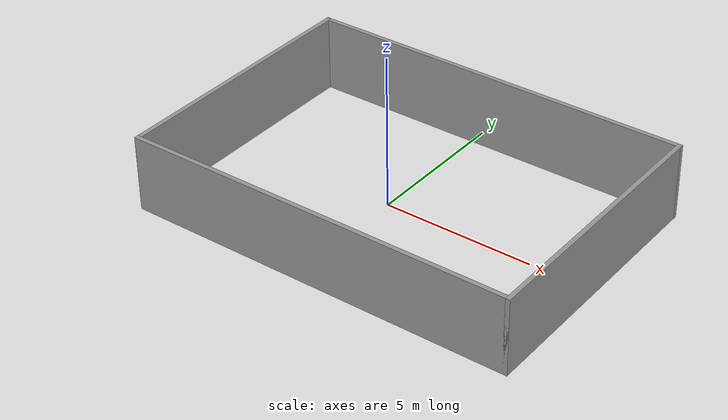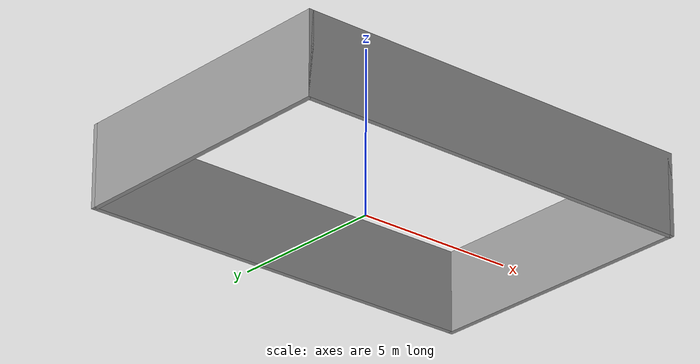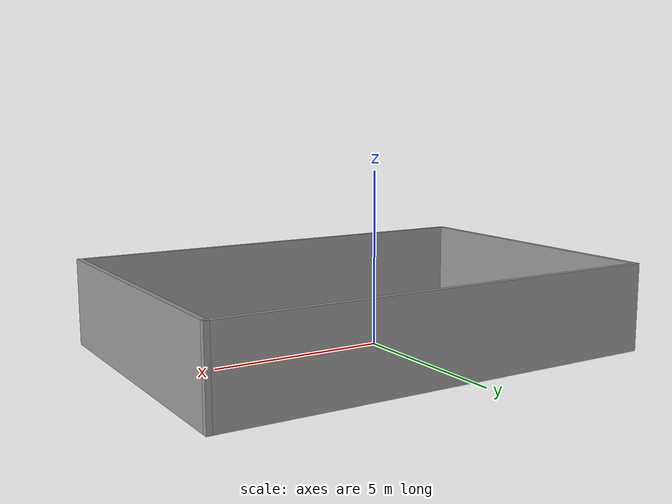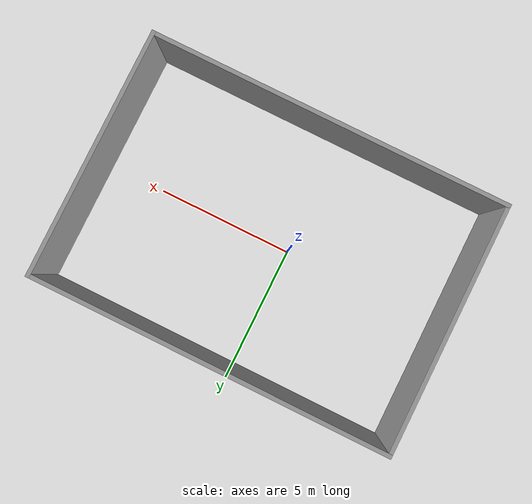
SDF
<?xml version='1.0'?>
<sdf version='1.7'>
  <model name='room'>
    <pose>0.706169 0.029559 0 0 -0 0</pose>
    <link name='Wall_10'>
      <collision name='Wall_10_Collision'>
        <geometry>
          <box>
            <size>9 0.15 2.5</size>
          </box>
        </geometry>
        <pose>0 0 1.25 0 -0 0</pose>
      </collision>
      <visual name='Wall_10_Visual'>
        <pose>0 0 1.25 0 -0 0</pose>
        <geometry>
          <box>
            <size>9 0.15 2.5</size>
          </box>
        </geometry>
        <material>
          <script>
            <uri>file://media/materials/scripts/gazebo.material</uri>
            <name>Gazebo/Grey</name>
          </script>
          <ambient>1 1 1 1</ambient>
        </material>
        <meta>
          <layer>0</layer>
        </meta>
      </visual>
      <pose>6.425 -0 0 0 -0 1.5708</pose>
    </link>
    <link name='Wall_11'>
      <collision name='Wall_11_Collision'>
        <geometry>
          <box>
            <size>13 0.15 2.5</size>
          </box>
        </geometry>
        <pose>0 0 1.25 0 -0 0</pose>
      </collision>
      <visual name='Wall_11_Visual'>
        <pose>0 0 1.25 0 -0 0</pose>
        <geometry>
          <box>
            <size>13 0.15 2.5</size>
          </box>
        </geometry>
        <material>
          <script>
            <uri>file://media/materials/scripts/gazebo.material</uri>
            <name>Gazebo/Grey</name>
          </script>
          <ambient>1 1 1 1</ambient>
        </material>
        <meta>
          <layer>0</layer>
        </meta>
      </visual>
      <pose>0 4.425 0 0 -0 3.14159</pose>
    </link>
    <link name='Wall_12'>
      <collision name='Wall_12_Collision'>
        <geometry>
          <box>
            <size>9 0.15 2.5</size>
          </box>
        </geometry>
        <pose>0 0 1.25 0 -0 0</pose>
      </collision>
      <visual name='Wall_12_Visual'>
        <pose>0 0 1.25 0 -0 0</pose>
        <geometry>
          <box>
            <size>9 0.15 2.5</size>
          </box>
        </geometry>
        <material>
          <script>
            <uri>file://media/materials/scripts/gazebo.material</uri>
            <name>Gazebo/Grey</name>
          </script>
          <ambient>1 1 1 1</ambient>
        </material>
        <meta>
          <layer>0</layer>
        </meta>
      </visual>
      <pose>-6.425 -0 0 0 -0 -1.5708</pose>
    </link>
    <link name='Wall_9'>
      <collision name='Wall_9_Collision'>
        <geometry>
          <box>
            <size>13 0.15 2.5</size>
          </box>
        </geometry>
        <pose>0 0 1.25 0 -0 0</pose>
      </collision>
      <visual name='Wall_9_Visual'>
        <pose>0 0 1.25 0 -0 0</pose>
        <geometry>
          <box>
            <size>13 0.15 2.5</size>
          </box>
        </geometry>
        <material>
          <script>
            <uri>file://media/materials/scripts/gazebo.material</uri>
            <name>Gazebo/Grey</name>
          </script>
          <ambient>1 1 1 1</ambient>
        </material>
        <meta>
          <layer>0</layer>
        </meta>
      </visual>
      <pose>0 -4.425 0 0 -0 0</pose>
    </link>
    <static>1</static>
  </model>
</sdf>
